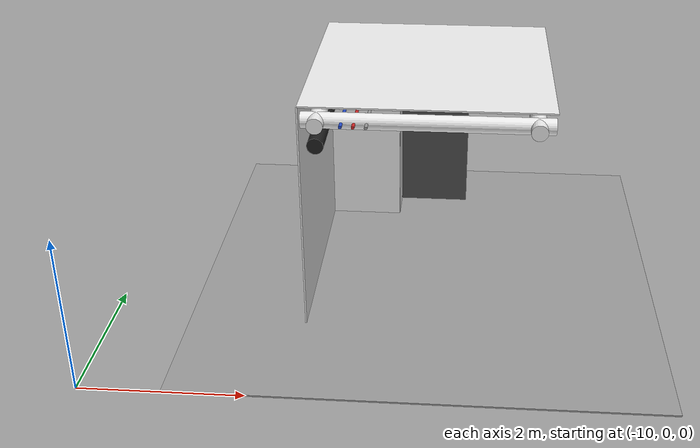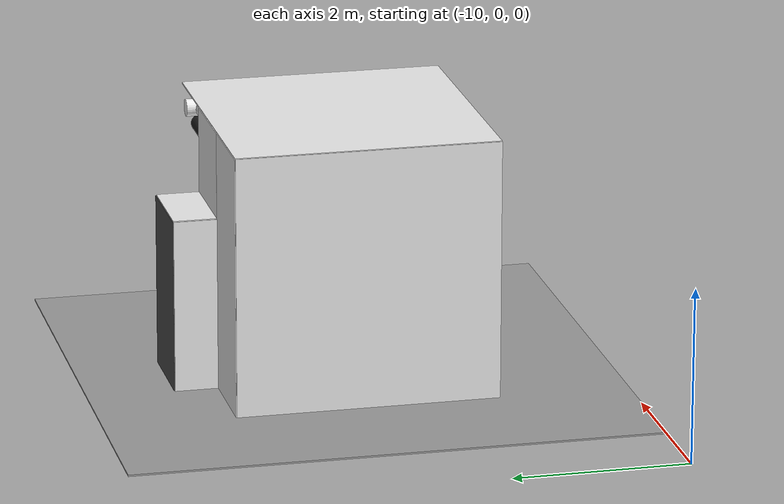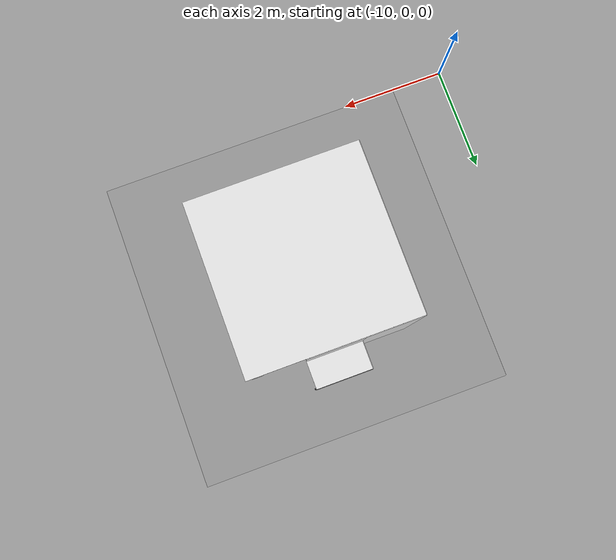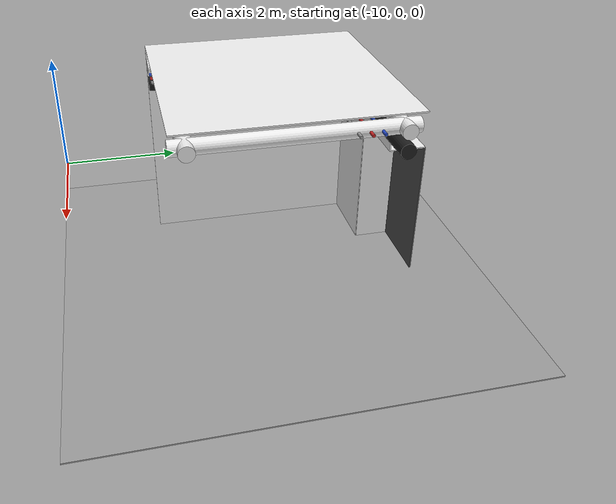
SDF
<sdf version="1.6">
 <world name="default">
  <model name="wall_front_-2_1_0_3">
   <static>1</static>
   <pose>-7.5 3.0 1.5 0.0 0.0 1.57</pose>
   <link name="link">
    <collision name="collision"><geometry><box><size>3.0 0.02 3.0</size></box></geometry></collision>
    <visual name="visual">
     <material>
      <script><name>Gazebo/White</name><uri>file://media/materials/scripts/gazebo.material</uri></script>
     </material>
     <geometry><box><size>3.0 0.02 3.0</size></box></geometry>
    </visual>
   </link>
  </model>
  <model name="wall_top_-2_1_0_3">
   <static>1</static>
   <pose>-6.0 3.0 3.0 1.57 0.0 1.57</pose>
   <link name="link">
    <collision name="collision"><geometry><box><size>3.0 0.02 3.0</size></box></geometry></collision>
    <visual name="visual">
     <material>
      <script><name>Gazebo/White</name><uri>file://media/materials/scripts/gazebo.material</uri></script>
     </material>
     <geometry><box><size>3.0 0.02 3.0</size></box></geometry>
    </visual>
   </link>
  </model>
  <model name="white_pipe_left_-2_1_0_3">
   <static>1</static>
   <pose>-6.0 3.0 2.76 0.0 0.0 1.57</pose>
   <link name="link_0">
    <visual name="visual">
     <pose>-1.3 0 0 1.57 0 0</pose>
     <geometry><cylinder><radius>0.1</radius><length>3.0</length></cylinder></geometry>
     <material>
      <script><uri>file://media/materials/scripts/gazebo.material</uri><name>Gazebo/White</name></script>
     </material>
    </visual>
    <collision name="collision">
     <pose>-1.3 0 0 1.57 0 0</pose>
     <geometry><cylinder><radius>0.1</radius><length>3.0</length></cylinder></geometry>
    </collision>
   </link>
  </model>
  <model name="white_pipe_right_-2_1_0_3">
   <static>1</static>
   <pose>-6.0 3.0 2.76 0.0 0.0 1.57</pose>
   <link name="link_0">
    <visual name="visual">
     <pose>1.3 0 0 1.57 0 0</pose>
     <geometry><cylinder><radius>0.1</radius><length>3.0</length></cylinder></geometry>
     <material>
      <script><uri>file://media/materials/scripts/gazebo.material</uri><name>Gazebo/White</name></script>
     </material>
    </visual>
    <collision name="collision">
     <pose>1.3 0 0 1.57 0 0</pose>
     <geometry><cylinder><radius>0.1</radius><length>3.0</length></cylinder></geometry>
    </collision>
   </link>
  </model>
  <model name="black_pipe_right_-2_1_0_3">
   <static>1</static>
   <pose>-6.0 3.0 2.76 0.0 0.0 1.57</pose>
   <link name="link_0">
    <visual name="visual">
     <pose>1.3 0 -0.25 1.57 0 0</pose>
     <geometry><cylinder><radius>0.1</radius><length>3.0</length></cylinder></geometry>
     <material>
      <script><uri>file://media/materials/scripts/gazebo.material</uri><name>Gazebo/Black</name></script>
     </material>
    </visual>
    <collision name="collision">
     <pose>1.3 0 -0.25 1.57 0 0</pose>
     <geometry><cylinder><radius>0.1</radius><length>3.0</length></cylinder></geometry>
    </collision>
   </link>
  </model>
  <model name="grey_pipe_right_-2_1_0_3">
   <static>1</static>
   <pose>-6.0 3.0 2.76 0.0 0.0 1.57</pose>
   <link name="link_0">
    <visual name="visual">
     <pose>0.7 0 0 1.57 0 0</pose>
     <geometry><cylinder><radius>0.02</radius><length>3.0</length></cylinder></geometry>
     <material>
      <script><uri>file://media/materials/scripts/gazebo.material</uri><name>Gazebo/Grey</name></script>
     </material>
    </visual>
    <collision name="collision">
     <pose>0.7 0 0 1.57 0 0</pose>
     <geometry><cylinder><radius>0.02</radius><length>3.0</length></cylinder></geometry>
    </collision>
   </link>
  </model>
  <model name="red_pipe_right_-2_1_0_3">
   <static>1</static>
   <pose>-6.0 3.0 2.76 0.0 0.0 1.57</pose>
   <link name="link_0">
    <visual name="visual">
     <pose>0.85 0 0 1.57 0 0</pose>
     <geometry><cylinder><radius>0.02</radius><length>3.0</length></cylinder></geometry>
     <material>
      <script><uri>file://media/materials/scripts/gazebo.material</uri><name>Gazebo/Red</name></script>
     </material>
    </visual>
    <collision name="collision">
     <pose>0.85 0 0 1.57 0 0</pose>
     <geometry><cylinder><radius>0.02</radius><length>3.0</length></cylinder></geometry>
    </collision>
   </link>
  </model>
  <model name="blue_pipe_right_-2_1_0_3">
   <static>1</static>
   <pose>-6.0 3.0 2.76 0.0 0.0 1.57</pose>
   <link name="link_0">
    <visual name="visual">
     <pose>1 0 0 1.57 0 0</pose>
     <geometry><cylinder><radius>0.02</radius><length>3.0</length></cylinder></geometry>
     <material>
      <script><uri>file://media/materials/scripts/gazebo.material</uri><name>Gazebo/Blue</name></script>
     </material>
    </visual>
    <collision name="collision">
     <pose>1 0 0 1.57 0 0</pose>
     <geometry><cylinder><radius>0.02</radius><length>3.0</length></cylinder></geometry>
    </collision>
   </link>
  </model>
  <model name="white_pipe_left_1_-2_1_0_3">
   <static>1</static>
   <pose>-6.0 3.0 2.76 0.0 0.0 3.14</pose>
   <link name="link_0">
    <visual name="visual">
     <pose>-1.3 0 0 1.57 0 0</pose>
     <geometry><cylinder><radius>0.1</radius><length>3.0</length></cylinder></geometry>
     <material>
      <script><uri>file://media/materials/scripts/gazebo.material</uri><name>Gazebo/White</name></script>
     </material>
    </visual>
    <collision name="collision">
     <pose>-1.3 0 0 1.57 0 0</pose>
     <geometry><cylinder><radius>0.1</radius><length>3.0</length></cylinder></geometry>
    </collision>
   </link>
  </model>
  <model name="white_pipe_right_1_-2_1_0_3">
   <static>1</static>
   <pose>-6.0 3.0 2.76 0.0 0.0 3.14</pose>
   <link name="link_0">
    <visual name="visual">
     <pose>1.3 0 0 1.57 0 0</pose>
     <geometry><cylinder><radius>0.1</radius><length>3.0</length></cylinder></geometry>
     <material>
      <script><uri>file://media/materials/scripts/gazebo.material</uri><name>Gazebo/White</name></script>
     </material>
    </visual>
    <collision name="collision">
     <pose>1.3 0 0 1.57 0 0</pose>
     <geometry><cylinder><radius>0.1</radius><length>3.0</length></cylinder></geometry>
    </collision>
   </link>
  </model>
  <model name="black_pipe_right_1_-2_1_0_3">
   <static>1</static>
   <pose>-6.0 3.0 2.76 0.0 0.0 3.14</pose>
   <link name="link_0">
    <visual name="visual">
     <pose>1.3 0 -0.25 1.57 0 0</pose>
     <geometry><cylinder><radius>0.1</radius><length>3.0</length></cylinder></geometry>
     <material>
      <script><uri>file://media/materials/scripts/gazebo.material</uri><name>Gazebo/Black</name></script>
     </material>
    </visual>
    <collision name="collision">
     <pose>1.3 0 -0.25 1.57 0 0</pose>
     <geometry><cylinder><radius>0.1</radius><length>3.0</length></cylinder></geometry>
    </collision>
   </link>
  </model>
  <model name="grey_pipe_right_1_-2_1_0_3">
   <static>1</static>
   <pose>-6.0 3.0 2.76 0.0 0.0 3.14</pose>
   <link name="link_0">
    <visual name="visual">
     <pose>0.7 0 0 1.57 0 0</pose>
     <geometry><cylinder><radius>0.02</radius><length>3.0</length></cylinder></geometry>
     <material>
      <script><uri>file://media/materials/scripts/gazebo.material</uri><name>Gazebo/Grey</name></script>
     </material>
    </visual>
    <collision name="collision">
     <pose>0.7 0 0 1.57 0 0</pose>
     <geometry><cylinder><radius>0.02</radius><length>3.0</length></cylinder></geometry>
    </collision>
   </link>
  </model>
  <model name="red_pipe_right_1_-2_1_0_3">
   <static>1</static>
   <pose>-6.0 3.0 2.76 0.0 0.0 3.14</pose>
   <link name="link_0">
    <visual name="visual">
     <pose>0.85 0 0 1.57 0 0</pose>
     <geometry><cylinder><radius>0.02</radius><length>3.0</length></cylinder></geometry>
     <material>
      <script><uri>file://media/materials/scripts/gazebo.material</uri><name>Gazebo/Red</name></script>
     </material>
    </visual>
    <collision name="collision">
     <pose>0.85 0 0 1.57 0 0</pose>
     <geometry><cylinder><radius>0.02</radius><length>3.0</length></cylinder></geometry>
    </collision>
   </link>
  </model>
  <model name="blue_pipe_right_1_-2_1_0_3">
   <static>1</static>
   <pose>-6.0 3.0 2.76 0.0 0.0 3.14</pose>
   <link name="link_0">
    <visual name="visual">
     <pose>1 0 0 1.57 0 0</pose>
     <geometry><cylinder><radius>0.02</radius><length>3.0</length></cylinder></geometry>
     <material>
      <script><uri>file://media/materials/scripts/gazebo.material</uri><name>Gazebo/Blue</name></script>
     </material>
    </visual>
    <collision name="collision">
     <pose>1 0 0 1.57 0 0</pose>
     <geometry><cylinder><radius>0.02</radius><length>3.0</length></cylinder></geometry>
    </collision>
   </link>
  </model>
  <model name="wall_right_front_left_-2_1_0_3">
   <static>1</static>
   <pose>-7.0 4.5 1.5 0.0 0.0 3.14</pose>
   <link name="link">
    <collision name="collision"><geometry><box><size>1.0 0.02 3.0</size></box></geometry></collision>
    <visual name="visual">
     <material>
      <script><name>Gazebo/White</name><uri>file://media/materials/scripts/gazebo.material</uri></script>
     </material>
     <geometry><box><size>1.0 0.02 3.0</size></box></geometry>
    </visual>
   </link>
  </model>
  <model name="wall_right_front_up_-2_1_0_3">
   <static>1</static>
   <pose>-6.0 4.5 2.5 0.0 0.0 3.14</pose>
   <link name="link">
    <collision name="collision"><geometry><box><size>1.0 0.02 1.0</size></box></geometry></collision>
    <visual name="visual">
     <material>
      <script><name>Gazebo/White</name><uri>file://media/materials/scripts/gazebo.material</uri></script>
     </material>
     <geometry><box><size>1.0 0.02 1.0</size></box></geometry>
    </visual>
   </link>
  </model>
  <model name="wall_right_inside_back_-2_1_0_3">
   <static>1</static>
   <pose>-6.0 5.0 1.0 0.0 0.0 3.14</pose>
   <link name="link">
    <collision name="collision"><geometry><box><size>1 0.02 2</size></box></geometry></collision>
    <visual name="visual">
     <material>
      <script><name>Gazebo/DarkGrey</name><uri>file://media/materials/scripts/gazebo.material</uri></script>
     </material>
     <geometry><box><size>1 0.02 2</size></box></geometry>
    </visual>
   </link>
  </model>
  <model name="wall_right_inside_left_-2_1_0_3">
   <static>1</static>
   <pose>-6.5 4.75 1.0 0.0 0.0 1.57</pose>
   <link name="link">
    <collision name="collision"><geometry><box><size>0.5 0.02 2</size></box></geometry></collision>
    <visual name="visual">
     <material>
      <script><name>Gazebo/White</name><uri>file://media/materials/scripts/gazebo.material</uri></script>
     </material>
     <geometry><box><size>0.5 0.02 2</size></box></geometry>
    </visual>
   </link>
  </model>
  <model name="wall_right_inside_top_-2_1_0_3">
   <static>1</static>
   <pose>-6.0 4.75 2.0 1.57 0.0 3.14</pose>
   <link name="link">
    <collision name="collision"><geometry><box><size>1 0.02 0.5</size></box></geometry></collision>
    <visual name="visual">
     <material>
      <script><name>Gazebo/White</name><uri>file://media/materials/scripts/gazebo.material</uri></script>
     </material>
     <geometry><box><size>1 0.02 0.5</size></box></geometry>
    </visual>
   </link>
  </model>
  <model name="wall_bottom_-2_1_0_3">
   <static>1</static>
   <pose>-6.0 3.0 0.0 0.0 0.0 1.57</pose>
   <link name="link">
    <collision name="collision"><geometry><box><size>6.0 6.0 0.02</size></box></geometry></collision>
    <visual name="visual">
     <material>
      <script><name>Gazebo/Grey</name><uri>file://media/materials/scripts/gazebo.material</uri></script>
     </material>
     <geometry><box><size>6.0 6.0 0.02</size></box></geometry>
    </visual>
   </link>
  </model>
 </world>
</sdf>
